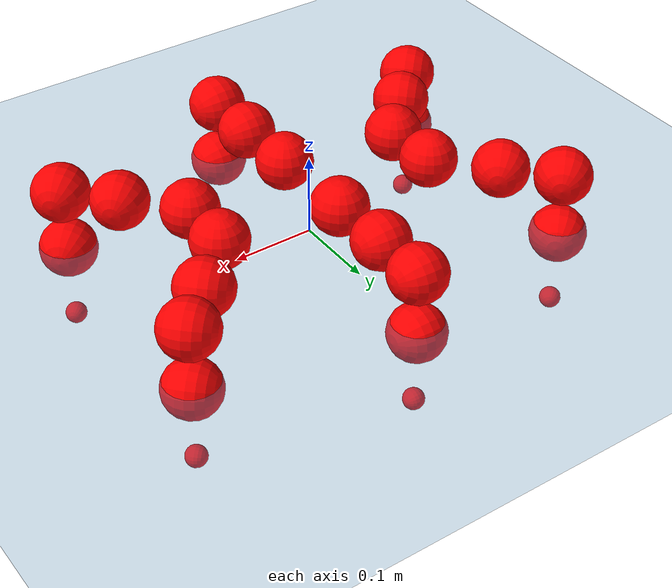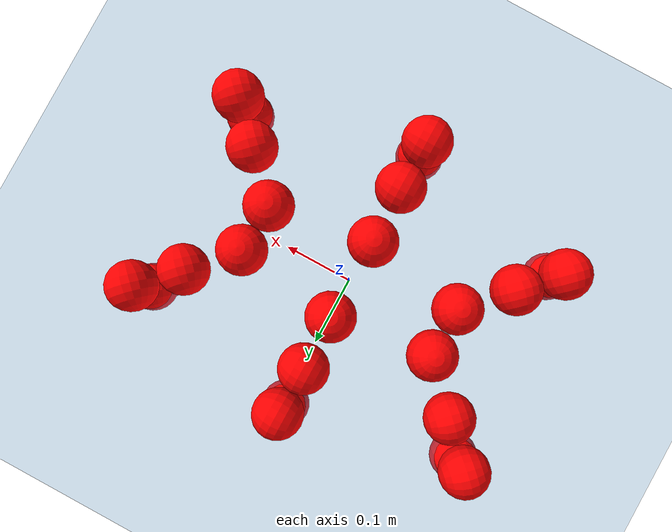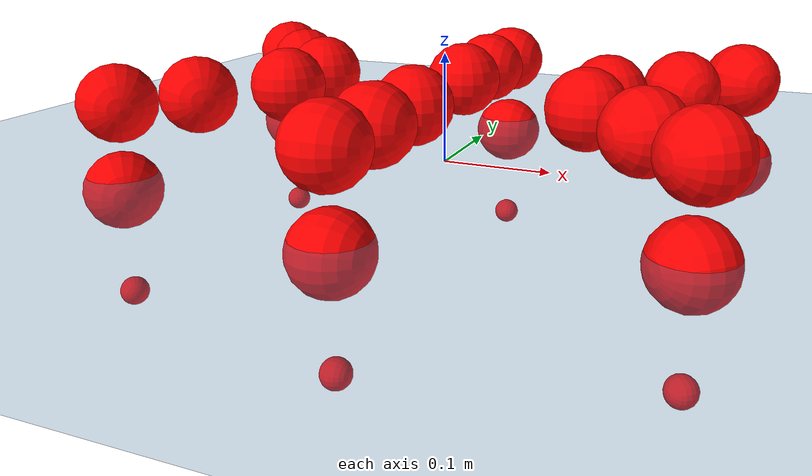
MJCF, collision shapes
<mujoco model="Golem">
  <compiler angle="radian" assetdir="assets" balanceinertia="true" inertiafromgeom="false"/>

  <option timestep="0.005" density="1.2" viscosity="2e-05"/>

  <size nkey="1"/>

  <visual>
    <quality shadowsize="8192"/>
    <map shadowclip="0.5"/>
  </visual>

  <default>
    <default class="/">
      <joint armature="0.01" damping="0.01" frictionloss="0.01"/>
      <geom contype="0" conaffinity="0" group="1" solref="-1000 -80"/>
      <site size="0.01 0.005 0.005" group="5"/>
      <general forcelimited="true" biastype="affine" gainprm="25" biasprm="0 -25 -0.5"/>
      <default class="visual">
        <geom type="mesh" group="2"/>
      </default>
      <default class="collision">
        <geom group="3"/>
      </default>
      <default class="foot">
        <geom size="0.01 0 0" condim="6" group="4" priority="1" solimp="0.015 1 0.01"/>
      </default>
      <default class="reward_collision_sphere">
        <geom group="5" rgba="1 0 0 1"/>
      </default>
    </default>
  </default>

  <asset>
    <texture type="skybox" colorspace="auto" name="//unnamed_texture_0" builtin="gradient" rgb1="0.95 0.95 0.95" rgb2="0.95 0.95 0.95" width="100" height="600"/>
    <texture type="2d" colorspace="auto" name="texplane" builtin="checker" rgb1="0.345 0.575 0.748" rgb2="0.345 0.575 0.748" markrgb="1 1 1" width="512" height="512"/>
    <material name="MatPlane" class="/" texture="texplane" texuniform="true" texrepeat="2 2" specular="0.9"/>
    <mesh name="body" class="/" file="body.stl" scale="0.001 0.001 0.001"/>
    <mesh name="coxa" class="/" file="coxa.stl" scale="0.001 0.001 0.001"/>
    <mesh name="femur" class="/" file="femur.stl" scale="0.001 0.001 0.001"/>
    <mesh name="tibia" class="/" file="tibia.stl" scale="0.001 0.001 0.001"/>
    <mesh name="tarsus" class="/" file="tarsus.stl" scale="0.001 0.001 0.001"/>
  </asset>

  <worldbody>
    <geom name="floor" class="/" size="100 100 0.125" type="plane" group="0" material="MatPlane"/>
    <light name="toplight_shadow" class="/" pos="0 0 5" dir="0.0990148 0.0990148 -0.990148" type="directional" ambient="0.04 0.04 0.04" diffuse="0.55 0.55 0.55" specular="0.12 0.12 0.12"/>
    <light name="toplight_fill" class="/" pos="0 0 5" dir="0.0990148 0.0990148 -0.990148" type="directional" castshadow="false" ambient="0.04 0.04 0.04" diffuse="0.3 0.3 0.3" specular="0.08 0.08 0.08"/>
    <body name="trunk" pos="-0.00167313 -0.000283882 0.000542422" quat="0.999999 -0.000529953 -6.09338e-05 -0.00116695">
      <inertial pos="0.00126235 0.00238291 -0.000338083" quat="0.999996 -0.00278381 -0.000184051 0.000182151" mass="2.30176" diaginertia="0.00587681 0.00116941 0.0110615"/>
      <joint name="//unnamed_joint_0" type="free"/>
      <geom name="//unnamed_geom_1" class="/" pos="0 0 0.0658644" quat="1 0 0 0" type="mesh" rgba="0.9 0.9 0.9 1" mesh="body"/>
      <site name="imu" class="/" pos="0.117456 0.0109864 0.101884" size="0.00862834"/>
      <camera name="track" class="/" pos="0 -1.30455 0" quat="0.707107 0.707107 0 0" mode="trackcom"/>
      <camera name="ego_camera" class="/" pos="0.117922 0 0.102913" quat="-0.5 -0.5 0.5 0.5"/>
      <body name="coxa_RR" pos="-0.161302 -0.0522543 0.0658618" quat="0.381955 0.000683713 0.000604678 -0.92418">
        <inertial pos="0.00103838 -0.000135197 0.000110118" quat="0.999916 0.00356893 -0.0124887 -0.000202129" mass="0.136749" diaginertia="0.00632129 0.00120593 0.0120435"/>
        <joint name="coxa_joint_RR" class="/" pos="0 0 0" axis="0.00192131 0.00263887 -0.999995" range="-3.13557 3.08676" armature="0.00975776" damping="0.011458" frictionloss="0.0087203"/>
        <geom name="//unnamed_geom_2" class="/" type="mesh" rgba="0.2 0.2 0.2 1" mesh="coxa"/>
        <geom name="//unnamed_geom_3" class="reward_collision_sphere" size="0.0345133" pos="-0.0272128 0 0"/>
        <body name="femur_RR" pos="0.0545373 0.00268215 -0.00219662" quat="0.499942 -0.500578 0.499749 0.499729">
          <inertial pos="0.00250509 -0.000446008 -0.000117461" quat="0.999927 -0.00995753 0.00305701 -0.00617382" mass="0.130947" diaginertia="0.00621855 0.00119872 0.0115995"/>
          <joint name="femur_joint_RR" class="/" pos="0 0 0" axis="0.000886039 -0.000511315 -0.999999" stiffness="0.00490981" range="-3.1258 3.11837" armature="0.00878071" damping="0.00762004" frictionloss="0.00847444"/>
          <geom name="//unnamed_geom_4" class="/" type="mesh" rgba="0.9 0.9 0.9 1" mesh="femur"/>
          <geom name="//unnamed_geom_5" class="reward_collision_sphere" size="0.0345133"/>
          <body name="tibia_RR" pos="0.00152934 -0.0684875 0.00147015" quat="0.000214576 1 -4.23271e-05 0.000277349">
            <inertial pos="-0.00179632 -8.67789e-05 0.000520676" quat="0.999999 -0.00139438 -1.15076e-05 0.000124828" mass="0.132596" diaginertia="0.00610642 0.00117514 0.0118114"/>
            <joint name="tibia_joint_RR" class="/" pos="0 0 0" axis="-0.00382822 -0.0109637 0.999933" stiffness="0.00405302" range="-3.13004 3.13326" armature="0.00871401" damping="0.00179502" frictionloss="0.00873306"/>
            <geom name="//unnamed_geom_6" class="/" type="mesh" rgba="0.2 0.2 0.2 1" mesh="tibia"/>
            <geom name="//unnamed_geom_7" class="reward_collision_sphere" size="0.0345133"/>
            <body name="tarsus_RR" pos="0.0783753 0.00231703 4.93918e-05" quat="1 0.000209479 0.000142957 0.000280051">
              <inertial pos="0.0556602 0.000158629 0.000526391" quat="0.499619 0.500399 0.499131 0.500849" mass="0.132705" diaginertia="0.00639999 0.00121113 0.0119899"/>
              <joint name="tarsus_joint_RR" class="/" pos="0 0 0" axis="-0.000385418 0.0023463 0.999997" range="-3.14367 3.13654" armature="0.00849589" damping="0.0428009" frictionloss="0.00776151"/>
              <geom name="//unnamed_geom_8" class="/" type="mesh" rgba="0.9 0.9 0.9 1" mesh="tarsus"/>
              <geom name="foot_1" class="foot" size="0.0089736" pos="0.101595 0 0" quat="0 -0.707107 0 0.707107"/>
              <geom name="//unnamed_geom_10" class="reward_collision_sphere" size="0.0345133"/>
              <geom name="//unnamed_geom_11" class="reward_collision_sphere" size="0.0129425" pos="0.0975127 0 0"/>
              <site name="foot_1" class="foot" pos="0.101595 0 0" quat="0 -0.707107 0 0.707107" size="0.00862834"/>
            </body>
          </body>
        </body>
      </body>
      <body name="coxa_RM" pos="-0.00274281 -0.0851862 0.0636224" quat="0.707401 1.73771e-06 -9.63971e-05 -0.706812">
        <inertial pos="-0.00230316 0.000626787 0.00138136" quat="0.999999 0.00105011 -0.000715141 -0.000351169" mass="0.13229" diaginertia="0.00633354 0.00122008 0.0119708"/>
        <joint name="coxa_joint_RM" class="/" pos="0 0 0" axis="-0.00434437 0.000328104 -0.999991" range="-3.10019 3.14571" armature="0.00934653" damping="0.0140964" frictionloss="0.00856433"/>
        <geom name="//unnamed_geom_12" class="/" type="mesh" rgba="0.2 0.2 0.2 1" mesh="coxa"/>
        <geom name="//unnamed_geom_13" class="reward_collision_sphere" size="0.0345133" pos="-0.0272128 0 0"/>
        <body name="femur_RM" pos="0.0524544 0.00213202 0.00110358" quat="0.499772 -0.500052 0.500083 0.500092">
          <inertial pos="4.09594e-05 -0.000826531 -0.000609658" quat="0.999915 0.010528 0.00755761 0.00127834" mass="0.124233" diaginertia="0.00594294 0.00115022 0.0113132"/>
          <joint name="femur_joint_RM" class="/" pos="0 0 0" axis="-5.30512e-05 0.000303877 -1" range="-3.19214 3.16021" armature="0.00878307" damping="0.00833711" frictionloss="0.00865984"/>
          <geom name="//unnamed_geom_14" class="/" type="mesh" rgba="0.9 0.9 0.9 1" mesh="femur"/>
          <geom name="//unnamed_geom_15" class="reward_collision_sphere" size="0.0345133"/>
          <body name="tibia_RM" pos="-0.000988733 -0.0698193 -0.00155143" quat="0.000711449 0.999999 0.00104093 1.14082e-05">
            <inertial pos="-0.00161259 -0.000171958 0.00111738" quat="0.999957 0.00210214 0.00109916 0.00893722" mass="0.127555" diaginertia="0.00609707 0.00114357 0.0111552"/>
            <joint name="tibia_joint_RM" class="/" pos="0 0 0" axis="0.00245293 0.00141383 0.999996" range="-3.13922 3.14259" armature="0.00880489" damping="0" frictionloss="0.00908063"/>
            <geom name="//unnamed_geom_16" class="/" type="mesh" rgba="0.2 0.2 0.2 1" mesh="tibia"/>
            <geom name="//unnamed_geom_17" class="reward_collision_sphere" size="0.0345133"/>
            <body name="tarsus_RM" pos="0.0798504 0.000396232 -0.00130872" quat="0.999999 -0.000722551 0.000872839 -0.000362632">
              <inertial pos="0.0544831 0.000176751 0.000278281" quat="0.497147 0.502024 0.499329 0.501485" mass="0.127163" diaginertia="0.00617149 0.00116786 0.0116011"/>
              <joint name="tarsus_joint_RM" class="/" pos="0 0 0" axis="0.0025371 0.0112057 0.999934" range="-3.16969 3.19103" armature="0.00831549" damping="0.00698365" frictionloss="0.00750461"/>
              <geom name="//unnamed_geom_18" class="/" type="mesh" rgba="0.9 0.9 0.9 1" mesh="tarsus"/>
              <geom name="foot_2" class="foot" size="0.00828146" pos="0.101595 0 0" quat="0 -0.707107 0 0.707107"/>
              <geom name="//unnamed_geom_20" class="reward_collision_sphere" size="0.0345133"/>
              <geom name="//unnamed_geom_21" class="reward_collision_sphere" size="0.0129425" pos="0.0975127 0 0"/>
              <site name="foot_2" class="foot" pos="0.101595 0 0" quat="0 -0.707107 0 0.707107" size="0.00862834"/>
            </body>
          </body>
        </body>
      </body>
      <body name="coxa_RF" pos="0.158883 -0.0518938 0.0671116" quat="0.924001 0.000253299 0.00104762 -0.382388">
        <inertial pos="0.00262725 0.00256302 0.000170125" quat="0.999997 -0.000868155 -0.000947672 0.00200713" mass="0.127141" diaginertia="0.00620786 0.0011626 0.0115468"/>
        <joint name="coxa_joint_RF" class="/" pos="0 0 0" axis="-0.00275304 0.00155244 -0.999995" range="-3.13807 3.08789" armature="0.00889349" damping="0.0203527" frictionloss="0.00851581"/>
        <geom name="//unnamed_geom_22" class="/" type="mesh" rgba="0.2 0.2 0.2 1" mesh="coxa"/>
        <geom name="//unnamed_geom_23" class="reward_collision_sphere" size="0.0345133" pos="-0.0272128 0 0"/>
        <body name="femur_RF" pos="0.0540586 -0.000654449 0.000479642" quat="0.500661 -0.49994 0.499165 0.500232">
          <inertial pos="-7.65953e-05 -0.00100185 0.00271814" quat="0.999936 -0.000605516 -0.0111888 -0.00129239" mass="0.126072" diaginertia="0.00592796 0.00114242 0.0108153"/>
          <joint name="femur_joint_RF" class="/" pos="0 0 0" axis="0.0106086 0.00757313 -0.999915" range="-3.14216 3.12507" armature="0.00985198" damping="0.00711936" frictionloss="0.00942603"/>
          <geom name="//unnamed_geom_24" class="/" type="mesh" rgba="0.9 0.9 0.9 1" mesh="femur"/>
          <geom name="//unnamed_geom_25" class="reward_collision_sphere" size="0.0345133"/>
          <body name="tibia_RF" pos="-0.000869309 -0.0694378 -0.00133512" quat="-7.4842e-05 1 1.91756e-05 7.14646e-05">
            <inertial pos="-0.000428518 0.000195526 -0.000134438" quat="0.999952 -0.00917862 0.00272837 0.00225076" mass="0.126755" diaginertia="0.00594239 0.00115414 0.0116273"/>
            <joint name="tibia_joint_RF" class="/" pos="0 0 0" axis="-0.00198934 0.00272233 0.999994" range="-3.13592 3.18921" armature="0.00852493" damping="0.00456532" frictionloss="0.00830321"/>
            <geom name="//unnamed_geom_26" class="/" type="mesh" rgba="0.2 0.2 0.2 1" mesh="tibia"/>
            <geom name="//unnamed_geom_27" class="reward_collision_sphere" size="0.0345133"/>
            <body name="tarsus_RF" pos="0.0780601 -0.00111924 0.00162403" quat="0.999999 0.000153019 0.000144758 0.00124591">
              <inertial pos="0.0547467 0.00030847 0.000382868" quat="0.502894 0.496707 0.503062 0.497302" mass="0.127214" diaginertia="0.00604111 0.00115873 0.0110599"/>
              <joint name="tarsus_joint_RF" class="/" pos="0 0 0" axis="0.000297097 0.00614392 0.999981" range="-3.13572 3.12942" armature="0.00861082" damping="0.0102494" frictionloss="0.0090519"/>
              <geom name="//unnamed_geom_28" class="/" type="mesh" rgba="0.9 0.9 0.9 1" mesh="tarsus"/>
              <geom name="foot_3" class="foot" size="0.00924817" pos="0.101595 0 0" quat="0 -0.707107 0 0.707107"/>
              <geom name="//unnamed_geom_30" class="reward_collision_sphere" size="0.0345133"/>
              <geom name="//unnamed_geom_31" class="reward_collision_sphere" size="0.0129425" pos="0.0975127 0 0"/>
              <site name="foot_3" class="foot" pos="0.101595 0 0" quat="0 -0.707107 0 0.707107" size="0.00862834"/>
            </body>
          </body>
        </body>
      </body>
      <body name="coxa_LR" pos="-0.161088 0.0551526 0.0669416" quat="0.383226 -0.000939793 0.000190146 0.923654">
        <inertial pos="-0.00025748 -0.000802126 -0.000568411" quat="0.999999 -0.000742586 -0.000947853 -0.0010826" mass="0.129113" diaginertia="0.00599666 0.00118039 0.0112242"/>
        <joint name="coxa_joint_LR" class="/" pos="0 0 0" axis="0.0111619 -0.0101666 -0.999886" range="-3.09634 3.14031" armature="0.00860788" damping="0.0055381" frictionloss="0.00865624"/>
        <geom name="//unnamed_geom_32" class="/" type="mesh" rgba="0.2 0.2 0.2 1" mesh="coxa"/>
        <geom name="//unnamed_geom_33" class="reward_collision_sphere" size="0.0345133" pos="-0.0272128 0 0"/>
        <body name="femur_LR" pos="0.0573627 -0.00135255 -0.00249004" quat="0.500046 -0.500138 0.499873 0.499943">
          <inertial pos="-0.000744951 0.00021724 -6.62389e-05" quat="0.999998 0.000804245 -0.000350677 0.00153622" mass="0.127503" diaginertia="0.00616934 0.00117369 0.0116925"/>
          <joint name="femur_joint_LR" class="/" pos="0 0 0" axis="-0.00654724 -7.88643e-05 0.999979" range="-3.18926 3.18709" armature="0.00878209" damping="0" frictionloss="0.00904135"/>
          <geom name="//unnamed_geom_34" class="/" type="mesh" rgba="0.9 0.9 0.9 1" mesh="femur"/>
          <geom name="//unnamed_geom_35" class="reward_collision_sphere" size="0.0345133"/>
          <body name="tibia_LR" pos="0.000575912 -0.0722134 -0.00105623" quat="-0.000417654 1 -9.89474e-05 0.00027319">
            <inertial pos="-0.0027646 0.00102438 -0.00235305" quat="0.999996 -0.00254161 -0.000847818 0.000208344" mass="0.128344" diaginertia="0.00618691 0.00122272 0.0114338"/>
            <joint name="tibia_joint_LR" class="/" pos="0 0 0" axis="-0.00172338 -0.00156799 -0.999997" range="-3.08989 3.1778" armature="0.00848571" damping="0.0015026" frictionloss="0.00890354"/>
            <geom name="//unnamed_geom_36" class="/" type="mesh" rgba="0.2 0.2 0.2 1" mesh="tibia"/>
            <geom name="//unnamed_geom_37" class="reward_collision_sphere" size="0.0345133"/>
            <body name="tarsus_LR" pos="0.0815057 0.000990104 -0.000233958" quat="1 -2.3176e-05 9.19641e-05 -3.98027e-05">
              <inertial pos="0.0544084 -0.000451117 -0.000824485" quat="0.49916 0.502013 0.498404 0.500416" mass="0.132309" diaginertia="0.00627423 0.00123646 0.0118825"/>
              <joint name="tarsus_joint_LR" class="/" pos="0 0 0" axis="0.00489155 0.0128219 -0.999906" stiffness="0.00478922" range="-3.12713 3.10291" armature="0.00894947" damping="0.0265317" frictionloss="0.00943704"/>
              <geom name="//unnamed_geom_38" class="/" type="mesh" rgba="0.9 0.9 0.9 1" mesh="tarsus"/>
              <geom name="foot_4" class="foot" size="0.00834733" pos="0.101595 0 0" quat="0.707107 0 -0.707107 0"/>
              <geom name="//unnamed_geom_40" class="reward_collision_sphere" size="0.0345133"/>
              <geom name="//unnamed_geom_41" class="reward_collision_sphere" size="0.0129425" pos="0.0975127 0 0"/>
              <site name="foot_4" class="foot" pos="0.101595 0 0" quat="0.707107 0 -0.707107 0" size="0.00862834"/>
            </body>
          </body>
        </body>
      </body>
      <body name="coxa_LM" pos="-0.00159167 0.0829367 0.065991" quat="0.707074 8.77927e-06 1.7733e-06 0.70714">
        <inertial pos="0.00284557 0.00254251 -0.000181629" quat="1 -0.000247216 8.45337e-06 0.000155514" mass="0.128151" diaginertia="0.00605725 0.00117994 0.0114963"/>
        <joint name="coxa_joint_LM" class="/" pos="0 0 0" axis="0.00412828 0.0024683 -0.999988" range="-3.11879 3.11797" armature="0.00958331" damping="0.00480824" frictionloss="0.0090005"/>
        <geom name="//unnamed_geom_42" class="/" type="mesh" rgba="0.2 0.2 0.2 1" mesh="coxa"/>
        <geom name="//unnamed_geom_43" class="reward_collision_sphere" size="0.0345133" pos="-0.0272128 0 0"/>
        <body name="femur_LM" pos="0.048819 0.00146209 -0.00100222" quat="0.500422 -0.500271 0.498796 0.500509">
          <inertial pos="-0.0013773 0.000641303 0.000869606" quat="0.999954 -0.00050065 -0.00518804 -0.00809838" mass="0.126739" diaginertia="0.00620514 0.00114498 0.0112434"/>
          <joint name="femur_joint_LM" class="/" pos="0 0 0" axis="-0.00226726 0.000372016 0.999997" stiffness="0.00141313" range="-3.14813 3.14257" armature="0.00749989" damping="0" frictionloss="0.00878679"/>
          <geom name="//unnamed_geom_44" class="/" type="mesh" rgba="0.9 0.9 0.9 1" mesh="femur"/>
          <geom name="//unnamed_geom_45" class="reward_collision_sphere" size="0.0345133"/>
          <body name="tibia_LM" pos="0.00163982 -0.0674565 -0.00141242" quat="-3.2796e-06 1 3.37146e-06 5.89583e-08">
            <inertial pos="-0.00108026 -0.000284998 0.000368777" quat="0.999993 0.00107172 -0.00082079 -0.00344761" mass="0.124718" diaginertia="0.0060277 0.00119138 0.0116702"/>
            <joint name="tibia_joint_LM" class="/" pos="0 0 0" axis="-0.00409558 -0.0050608 -0.999979" stiffness="0.000701777" range="-3.12642 3.17339" armature="0.00873621" damping="0" frictionloss="0.00819801"/>
            <geom name="//unnamed_geom_46" class="/" type="mesh" rgba="0.2 0.2 0.2 1" mesh="tibia"/>
            <geom name="//unnamed_geom_47" class="reward_collision_sphere" size="0.0345133"/>
            <body name="tarsus_LM" pos="0.0807702 0.00132271 -0.00134161" quat="1 2.94584e-05 -9.16181e-05 -0.000193281">
              <inertial pos="0.0559939 0.000510217 -0.000130629" quat="0.500796 0.500625 0.497687 0.500885" mass="0.136622" diaginertia="0.00633521 0.00121507 0.0115434"/>
              <joint name="tarsus_joint_LM" class="/" pos="0 0 0" axis="0.00160285 0.000553468 -0.999999" stiffness="0.0107095" range="-3.13823 3.11056" armature="0.0085589" damping="0.0189556" frictionloss="0.00860833"/>
              <geom name="//unnamed_geom_48" class="/" type="mesh" rgba="0.9 0.9 0.9 1" mesh="tarsus"/>
              <geom name="foot_5" class="foot" size="0.00850334" pos="0.101595 0 0" quat="0.707107 0 -0.707107 0"/>
              <geom name="//unnamed_geom_50" class="reward_collision_sphere" size="0.0345133"/>
              <geom name="//unnamed_geom_51" class="reward_collision_sphere" size="0.0129425" pos="0.0975127 0 0"/>
              <site name="foot_5" class="foot" pos="0.101595 0 0" quat="0.707107 0 -0.707107 0" size="0.00862834"/>
            </body>
          </body>
        </body>
      </body>
      <body name="coxa_LF" pos="0.16158 0.0541159 0.0671747" quat="0.923886 -4.0013e-05 -2.94443e-05 0.382668">
        <inertial pos="-0.000224617 -0.000980255 0.000508977" quat="1 0.000207416 0.000352421 -5.52432e-05" mass="0.125568" diaginertia="0.0060436 0.00118849 0.0116508"/>
        <joint name="coxa_joint_LF" class="/" pos="0 0 0" axis="0.00607897 0.00628563 -0.999962" stiffness="0.000476582" range="-3.13559 3.13934" armature="0.00834215" damping="0.00880921" frictionloss="0.00865567"/>
        <geom name="//unnamed_geom_52" class="/" type="mesh" rgba="0.2 0.2 0.2 1" mesh="coxa"/>
        <geom name="//unnamed_geom_53" class="reward_collision_sphere" size="0.0345133" pos="-0.0272128 0 0"/>
        <body name="femur_LF" pos="0.0534216 0.00297146 -0.00251164" quat="0.499671 -0.500373 0.499961 0.499995">
          <inertial pos="-0.0023265 -0.000205032 0.000950507" quat="0.999997 -0.00139609 -0.00187984 0.000562424" mass="0.129478" diaginertia="0.00604745 0.00113983 0.0113014"/>
          <joint name="femur_joint_LF" class="/" pos="0 0 0" axis="0.000991407 0.0126981 0.999919" range="-3.13815 3.0902" armature="0.00776133" damping="0.00280299" frictionloss="0.00819382"/>
          <geom name="//unnamed_geom_54" class="/" type="mesh" rgba="0.9 0.9 0.9 1" mesh="femur"/>
          <geom name="//unnamed_geom_55" class="reward_collision_sphere" size="0.0345133"/>
          <body name="tibia_LF" pos="-0.0023328 -0.070206 0.00165773" quat="0.000196613 1 -0.000380232 3.67676e-06">
            <inertial pos="-0.000884739 0.000401123 -0.000597861" quat="0.999923 -0.0108992 0.0054674 -0.00218936" mass="0.126016" diaginertia="0.00610917 0.00117662 0.0114617"/>
            <joint name="tibia_joint_LF" class="/" pos="0 0 0" axis="0.000588501 -0.0022429 -0.999997" range="-3.13349 3.12852" armature="0.00748447" damping="0" frictionloss="0.00853086"/>
            <geom name="//unnamed_geom_56" class="/" type="mesh" rgba="0.2 0.2 0.2 1" mesh="tibia"/>
            <geom name="//unnamed_geom_57" class="reward_collision_sphere" size="0.0345133"/>
            <body name="tarsus_LF" pos="0.0804425 -5.59541e-05 0.000331725" quat="0.999999 0.000450366 6.5641e-06 0.00123785">
              <inertial pos="0.0566772 -0.00203468 0.000295727" quat="0.498753 0.502111 0.498821 0.500308" mass="0.126151" diaginertia="0.006068 0.00115367 0.0113784"/>
              <joint name="tarsus_joint_LF" class="/" pos="0 0 0" axis="-0.00758404 0.00977216 -0.999923" stiffness="0.00103351" range="-3.09385 3.13497" armature="0.00868612" damping="0.0223155" frictionloss="0.00847544"/>
              <geom name="//unnamed_geom_58" class="/" type="mesh" rgba="0.9 0.9 0.9 1" mesh="tarsus"/>
              <geom name="foot_6" class="foot" size="0.00787627" pos="0.101595 0 0" quat="0.707107 0 -0.707107 0"/>
              <geom name="//unnamed_geom_60" class="reward_collision_sphere" size="0.0345133"/>
              <geom name="//unnamed_geom_61" class="reward_collision_sphere" size="0.0129425" pos="0.0975127 0 0"/>
              <site name="foot_6" class="foot" pos="0.101595 0 0" quat="0.707107 0 -0.707107 0" size="0.00862834"/>
            </body>
          </body>
        </body>
      </body>
    </body>
  </worldbody>

  <contact>
    <pair class="/" geom1="floor" geom2="foot_1" name="//unnamed_contact_0"/>
    <pair class="/" geom1="floor" geom2="foot_2" name="//unnamed_contact_1"/>
    <pair class="/" geom1="floor" geom2="foot_3" name="//unnamed_contact_2"/>
    <pair class="/" geom1="floor" geom2="foot_4" name="//unnamed_contact_3"/>
    <pair class="/" geom1="floor" geom2="foot_5" name="//unnamed_contact_4"/>
    <pair class="/" geom1="floor" geom2="foot_6" name="//unnamed_contact_5"/>
  </contact>

  <actuator>
    <general name="coxa_joint_RR" class="/" joint="coxa_joint_RR" forcerange="-6.32775 6.32775" gainprm="20.949" biasprm="0 -20.949 -0.433038"/>
    <general name="femur_joint_RR" class="/" joint="femur_joint_RR" forcerange="-6.27062 6.27062" gainprm="20.949" biasprm="0 -20.949 -0.433038"/>
    <general name="tibia_joint_RR" class="/" joint="tibia_joint_RR" forcerange="-6.43041 6.43041" gainprm="20.949" biasprm="0 -20.949 -0.433038"/>
    <general name="tarsus_joint_RR" class="/" joint="tarsus_joint_RR" forcerange="-6.54283 6.54283" gainprm="20.949" biasprm="0 -20.949 -0.433038"/>
    <general name="coxa_joint_RM" class="/" joint="coxa_joint_RM" forcerange="-6.52256 6.52256" gainprm="20.949" biasprm="0 -20.949 -0.433038"/>
    <general name="femur_joint_RM" class="/" joint="femur_joint_RM" forcerange="-5.84086 5.84086" gainprm="20.949" biasprm="0 -20.949 -0.433038"/>
    <general name="tibia_joint_RM" class="/" joint="tibia_joint_RM" forcerange="-6.27692 6.27692" gainprm="20.949" biasprm="0 -20.949 -0.433038"/>
    <general name="tarsus_joint_RM" class="/" joint="tarsus_joint_RM" forcerange="-6.13089 6.13089" gainprm="20.949" biasprm="0 -20.949 -0.433038"/>
    <general name="coxa_joint_RF" class="/" joint="coxa_joint_RF" forcerange="-5.79385 5.79385" gainprm="20.949" biasprm="0 -20.949 -0.433038"/>
    <general name="femur_joint_RF" class="/" joint="femur_joint_RF" forcerange="-5.88651 5.88651" gainprm="20.949" biasprm="0 -20.949 -0.433038"/>
    <general name="tibia_joint_RF" class="/" joint="tibia_joint_RF" forcerange="-6.6697 6.6697" gainprm="20.949" biasprm="0 -20.949 -0.433038"/>
    <general name="tarsus_joint_RF" class="/" joint="tarsus_joint_RF" forcerange="-6.2499 6.2499" gainprm="20.949" biasprm="0 -20.949 -0.433038"/>
    <general name="coxa_joint_LR" class="/" joint="coxa_joint_LR" forcerange="-6.32133 6.32133" gainprm="20.949" biasprm="0 -20.949 -0.433038"/>
    <general name="femur_joint_LR" class="/" joint="femur_joint_LR" forcerange="-6.18594 6.18594" gainprm="20.949" biasprm="0 -20.949 -0.433038"/>
    <general name="tibia_joint_LR" class="/" joint="tibia_joint_LR" forcerange="-5.69802 5.69802" gainprm="20.949" biasprm="0 -20.949 -0.433038"/>
    <general name="tarsus_joint_LR" class="/" joint="tarsus_joint_LR" forcerange="-6.91244 6.91244" gainprm="20.949" biasprm="0 -20.949 -0.433038"/>
    <general name="coxa_joint_LM" class="/" joint="coxa_joint_LM" forcerange="-6.36335 6.36335" gainprm="20.949" biasprm="0 -20.949 -0.433038"/>
    <general name="femur_joint_LM" class="/" joint="femur_joint_LM" forcerange="-6.22091 6.22091" gainprm="20.949" biasprm="0 -20.949 -0.433038"/>
    <general name="tibia_joint_LM" class="/" joint="tibia_joint_LM" forcerange="-6.24544 6.24544" gainprm="20.949" biasprm="0 -20.949 -0.433038"/>
    <general name="tarsus_joint_LM" class="/" joint="tarsus_joint_LM" forcerange="-6.39617 6.39617" gainprm="20.949" biasprm="0 -20.949 -0.433038"/>
    <general name="coxa_joint_LF" class="/" joint="coxa_joint_LF" forcerange="-6.27351 6.27351" gainprm="20.949" biasprm="0 -20.949 -0.433038"/>
    <general name="femur_joint_LF" class="/" joint="femur_joint_LF" forcerange="-6.31943 6.31943" gainprm="20.949" biasprm="0 -20.949 -0.433038"/>
    <general name="tibia_joint_LF" class="/" joint="tibia_joint_LF" forcerange="-6.12711 6.12711" gainprm="20.949" biasprm="0 -20.949 -0.433038"/>
    <general name="tarsus_joint_LF" class="/" joint="tarsus_joint_LF" forcerange="-6.26762 6.26762" gainprm="20.949" biasprm="0 -20.949 -0.433038"/>
  </actuator>

  <sensor>
    <gyro site="imu" name="imu_angular_velocity"/>
    <velocimeter site="imu" name="imu_linear_velocity"/>
    <framelinvel objtype="site" objname="foot_1" name="foot_1_global_linear_velocity"/>
    <framelinvel objtype="site" objname="foot_2" name="foot_2_global_linear_velocity"/>
    <framelinvel objtype="site" objname="foot_3" name="foot_3_global_linear_velocity"/>
    <framelinvel objtype="site" objname="foot_4" name="foot_4_global_linear_velocity"/>
    <framelinvel objtype="site" objname="foot_5" name="foot_5_global_linear_velocity"/>
    <framelinvel objtype="site" objname="foot_6" name="foot_6_global_linear_velocity"/>
  </sensor>

  <keyframe>
    <key name="home" qpos="0 0 0.1457 1 0 0 0 0 0 0 0 0 0 0 0 0 0 0 0 0 0 0 0 0 0 0 0 0 0 0 0"/>
  </keyframe>
</mujoco>
